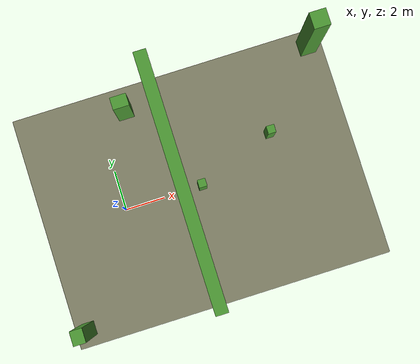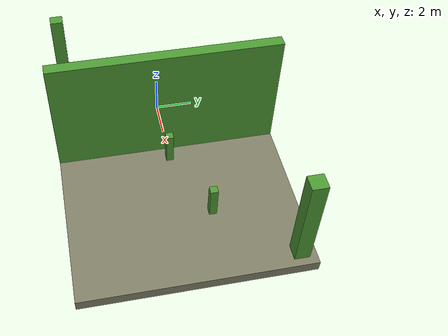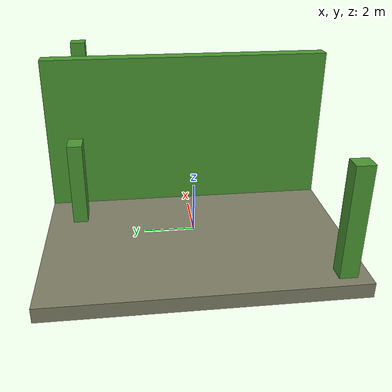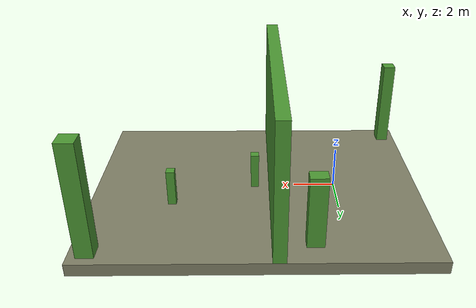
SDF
<sdf version="1.9">
 <world name="polinasi">
  <physics name="1ms" type="ignore">
   <max_step_size>0.001</max_step_size>
   <real_time_factor>1.0</real_time_factor>
  </physics>
  <plugin filename="gz-sim-physics-system" name="gz::sim::systems::Physics"/>
  <plugin filename="gz-sim-sensors-system" name="gz::sim::systems::Sensors">
   <render_engine>ogre2</render_engine>
  </plugin>
  <plugin filename="gz-sim-imu-system" name="gz::sim::systems::Imu"/>
  <plugin filename="gz-sim-user-commands-system" name="gz::sim::systems::UserCommands"/>
  <plugin filename="gz-sim-scene-broadcaster-system" name="gz::sim::systems::SceneBroadcaster"/>
  <scene><ambient>0.8 0.8 0.8</ambient></scene>
  <light name="sun" type="directional">
   <pose>0 0 10 0 0 0</pose>
   <diffuse>0.8 0.8 0.8 1</diffuse>
   <direction>-0.4 0.2 -0.9</direction>
  </light>
  <model name="obstacle_0">
   <static>true</static>
   <pose>3.9 0.0 -0.3 0 0 0</pose>
   <link name="obstacle">
    <collision name="collision"><geometry><box><size>16.2 12.0 0.6</size></box></geometry></collision>
    <visual name="visual">
     <geometry><box><size>16.2 12.0 0.6</size></box></geometry>
     <material><ambient>0.5 0.5 0.4 1</ambient><diffuse>0.5 0.5 0.4 1</diffuse></material>
    </visual>
   </link>
  </model>
  <model name="obstacle_1">
   <static>true</static>
   <pose>-3.5 -5.15 2.25 0 0 0</pose>
   <link name="obstacle">
    <collision name="collision">
     <geometry><box><size>0.5999999999999996 0.7000000000000002 4.5</size></box></geometry>
    </collision>
    <visual name="visual">
     <geometry><box><size>0.5999999999999996 0.7000000000000002 4.5</size></box></geometry>
     <material><ambient>0.3 0.6 0.2 1</ambient><diffuse>0.3 0.6 0.2 1</diffuse></material>
    </visual>
   </link>
  </model>
  <model name="obstacle_2">
   <static>true</static>
   <pose>11.2 5.199999999999999 2.75 0 0 0</pose>
   <link name="obstacle">
    <collision name="collision">
     <geometry><box><size>0.7999999999999989 0.7999999999999998 5.5</size></box></geometry>
    </collision>
    <visual name="visual">
     <geometry><box><size>0.7999999999999989 0.7999999999999998 5.5</size></box></geometry>
     <material><ambient>0.3 0.6 0.2 1</ambient><diffuse>0.3 0.6 0.2 1</diffuse></material>
    </visual>
   </link>
  </model>
  <model name="obstacle_3">
   <static>true</static>
   <pose>1.4 4.7 1.75 0 0 0</pose>
   <link name="obstacle">
    <collision name="collision">
     <geometry><box><size>0.8 0.5999999999999996 3.5</size></box></geometry>
    </collision>
    <visual name="visual">
     <geometry><box><size>0.8 0.5999999999999996 3.5</size></box></geometry>
     <material><ambient>0.3 0.6 0.2 1</ambient><diffuse>0.3 0.6 0.2 1</diffuse></material>
    </visual>
   </link>
  </model>
  <model name="obstacle_4">
   <static>true</static>
   <pose>4.0 0.0 0.9 0 0 0</pose>
   <link name="obstacle">
    <collision name="collision">
     <geometry><box><size>0.40000000000000036 0.4 1.8</size></box></geometry>
    </collision>
    <visual name="visual">
     <geometry><box><size>0.40000000000000036 0.4 1.8</size></box></geometry>
     <material><ambient>0.3 0.6 0.2 1</ambient><diffuse>0.3 0.6 0.2 1</diffuse></material>
    </visual>
   </link>
  </model>
  <model name="obstacle_5">
   <static>true</static>
   <pose>8.0 1.5 0.9 0 0 0</pose>
   <link name="obstacle">
    <collision name="collision">
     <geometry><box><size>0.39999999999999947 0.3999999999999999 1.8</size></box></geometry>
    </collision>
    <visual name="visual">
     <geometry><box><size>0.39999999999999947 0.3999999999999999 1.8</size></box></geometry>
     <material><ambient>0.3 0.6 0.2 1</ambient><diffuse>0.3 0.6 0.2 1</diffuse></material>
    </visual>
   </link>
  </model>
  <model name="obstacle_6">
   <static>true</static>
   <pose>3.0 0.0 3.3 0 0 0</pose>
   <link name="obstacle">
    <collision name="collision">
     <geometry><box><size>0.5999999999999996 12.0 6.6</size></box></geometry>
    </collision>
    <visual name="visual">
     <geometry><box><size>0.5999999999999996 12.0 6.6</size></box></geometry>
     <material><ambient>0.3 0.6 0.2 1</ambient><diffuse>0.3 0.6 0.2 1</diffuse></material>
    </visual>
   </link>
  </model>
 </world>
</sdf>
